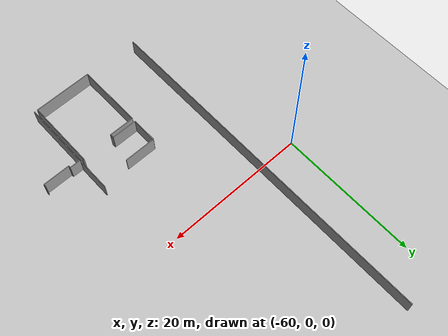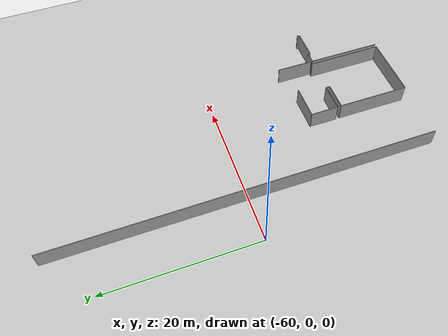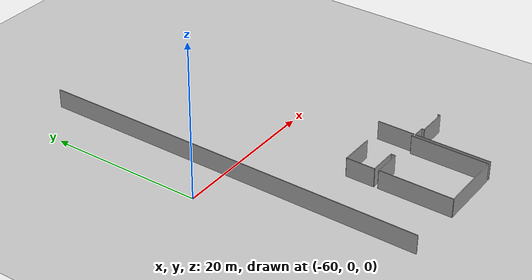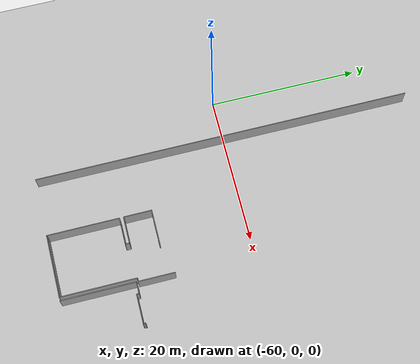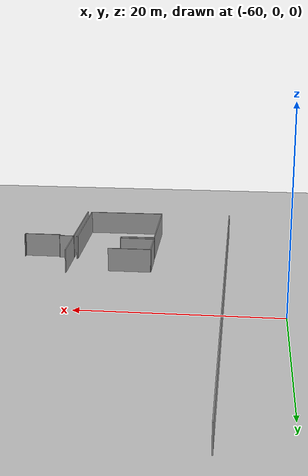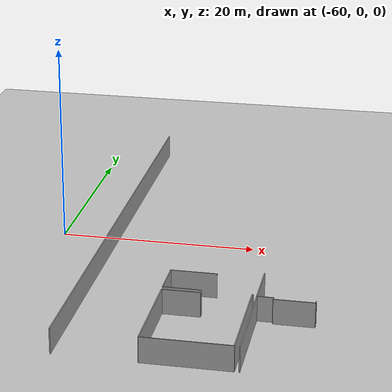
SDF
<sdf version="1.6">
 <world name="default">
  <model name="ground_plane">
   <static>1</static>
   <link name="link">
    <collision name="collision">
     <geometry><plane><normal>0 0 1</normal><size>100 100</size></plane></geometry>
     <surface><friction><ode><mu>100</mu><mu2>50</mu2></ode></friction></surface>
    </collision>
    <visual name="visual">
     <cast_shadows>0</cast_shadows>
     <geometry><plane><normal>0 0 1</normal><size>100 100</size></plane></geometry>
     <material>
      <script><uri>file://media/materials/scripts/gazebo.material</uri><name>Gazebo/Grey</name></script>
     </material>
    </visual>
   </link>
  </model>
  <model name="50045366">
   <static>1</static>
   <link name="Wall_92">
    <collision name="Wall_92_Collision">
     <geometry><box><size>4.80166643381 0.1 2.5</size></box></geometry>
     <pose>2.4008332169 0 1.25 0 0 0</pose>
    </collision>
    <visual name="Wall_92_Visual">
     <pose>2.4008332169 0 1.25 0 0 0</pose>
     <geometry><box><size>4.80166643381 0.1 2.5</size></box></geometry>
     <material>
      <script><uri>file://media/materials/scripts/gazebo.material</uri><name>Gazebo/Grey</name></script>
      <ambient>1 1 1 1</ambient>
     </material>
    </visual>
    <pose>16.7103174099 -40.7215709187 0 0 0 1.57079632679</pose>
   </link>
   <link name="Wall_106">
    <collision name="Wall_106_Collision">
     <geometry><box><size>9.49498926725 0.1 2.5</size></box></geometry>
     <pose>4.74749463363 0 1.25 0 0 0</pose>
    </collision>
    <visual name="Wall_106_Visual">
     <pose>4.74749463363 0 1.25 0 0 0</pose>
     <geometry><box><size>9.49498926725 0.1 2.5</size></box></geometry>
     <material>
      <script><uri>file://media/materials/scripts/gazebo.material</uri><name>Gazebo/Grey</name></script>
      <ambient>1 1 1 1</ambient>
     </material>
    </visual>
    <pose>7.91047998882 -50.7246192732 0 0 0 1.57079632679</pose>
   </link>
   <link name="Wall_107">
    <collision name="Wall_107_Collision">
     <geometry><box><size>3.61445936162 0.1 2.5</size></box></geometry>
     <pose>1.80722968081 0 1.25 0 0 0</pose>
    </collision>
    <visual name="Wall_107_Visual">
     <pose>1.80722968081 0 1.25 0 0 0</pose>
     <geometry><box><size>3.61445936162 0.1 2.5</size></box></geometry>
     <material>
      <script><uri>file://media/materials/scripts/gazebo.material</uri><name>Gazebo/Grey</name></script>
      <ambient>1 1 1 1</ambient>
     </material>
    </visual>
    <pose>7.91047998882 -41.229630006 0 0 0 0.0</pose>
   </link>
   <link name="Wall_108">
    <collision name="Wall_108_Collision">
     <geometry><box><size>0.540447854085 0.1 2.5</size></box></geometry>
     <pose>0.270223927043 0 1.25 0 0 0</pose>
    </collision>
    <visual name="Wall_108_Visual">
     <pose>0.270223927043 0 1.25 0 0 0</pose>
     <geometry><box><size>0.540447854085 0.1 2.5</size></box></geometry>
     <material>
      <script><uri>file://media/materials/scripts/gazebo.material</uri><name>Gazebo/Grey</name></script>
      <ambient>1 1 1 1</ambient>
     </material>
    </visual>
    <pose>11.5249393504 -41.229630006 0 0 0 1.57079632679</pose>
   </link>
   <link name="Wall_109">
    <collision name="Wall_109_Collision">
     <geometry><box><size>3.63706799101 0.1 2.5</size></box></geometry>
     <pose>1.8185339955 0 1.25 0 0 0</pose>
    </collision>
    <visual name="Wall_109_Visual">
     <pose>1.8185339955 0 1.25 0 0 0</pose>
     <geometry><box><size>3.63706799101 0.1 2.5</size></box></geometry>
     <material>
      <script><uri>file://media/materials/scripts/gazebo.material</uri><name>Gazebo/Grey</name></script>
      <ambient>1 1 1 1</ambient>
     </material>
    </visual>
    <pose>11.5249393504 -40.6891821519 0 0 0 3.14159265359</pose>
   </link>
   <link name="Wall_110">
    <collision name="Wall_110_Collision">
     <geometry><box><size>3.70705313028 0.1 2.5</size></box></geometry>
     <pose>1.85352656514 0 1.25 0 0 0</pose>
    </collision>
    <visual name="Wall_110_Visual">
     <pose>1.85352656514 0 1.25 0 0 0</pose>
     <geometry><box><size>3.70705313028 0.1 2.5</size></box></geometry>
     <material>
      <script><uri>file://media/materials/scripts/gazebo.material</uri><name>Gazebo/Grey</name></script>
      <ambient>1 1 1 1</ambient>
     </material>
    </visual>
    <pose>7.88787135944 -40.6891821519 0 0 0 1.57079632679</pose>
   </link>
   <link name="Wall_111">
    <collision name="Wall_111_Collision">
     <geometry><box><size>4.48146219405 0.1 2.5</size></box></geometry>
     <pose>2.24073109703 0 1.25 0 0 0</pose>
    </collision>
    <visual name="Wall_111_Visual">
     <pose>2.24073109703 0 1.25 0 0 0</pose>
     <geometry><box><size>4.48146219405 0.1 2.5</size></box></geometry>
     <material>
      <script><uri>file://media/materials/scripts/gazebo.material</uri><name>Gazebo/Grey</name></script>
      <ambient>1 1 1 1</ambient>
     </material>
    </visual>
    <pose>7.88787135944 -36.9821290216 0 0 0 0.0</pose>
   </link>
   <link name="Wall_114">
    <collision name="Wall_114_Collision">
     <geometry><box><size>0.148480268255 0.1 2.5</size></box></geometry>
     <pose>0.0742401341276 0 1.25 0 0 0</pose>
    </collision>
    <visual name="Wall_114_Visual">
     <pose>0.0742401341276 0 1.25 0 0 0</pose>
     <geometry><box><size>0.148480268255 0.1 2.5</size></box></geometry>
     <material>
      <script><uri>file://media/materials/scripts/gazebo.material</uri><name>Gazebo/Grey</name></script>
      <ambient>1 1 1 1</ambient>
     </material>
    </visual>
    <pose>16.3950667463 -40.7142040619 0 0 0 3.14159265359</pose>
   </link>
   <link name="Wall_115">
    <collision name="Wall_115_Collision">
     <geometry><box><size>9.9711676468 0.1 2.5</size></box></geometry>
     <pose>4.9855838234 0 1.25 0 0 0</pose>
    </collision>
    <visual name="Wall_115_Visual">
     <pose>4.9855838234 0 1.25 0 0 0</pose>
     <geometry><box><size>9.9711676468 0.1 2.5</size></box></geometry>
     <material>
      <script><uri>file://media/materials/scripts/gazebo.material</uri><name>Gazebo/Grey</name></script>
      <ambient>1 1 1 1</ambient>
     </material>
    </visual>
    <pose>16.246586478 -40.7142040619 0 0 0 -1.57079632679</pose>
   </link>
   <link name="Wall_116">
    <collision name="Wall_116_Collision">
     <geometry><box><size>8.33619888021 0.1 2.5</size></box></geometry>
     <pose>4.1680994401 0 1.25 0 0 0</pose>
    </collision>
    <visual name="Wall_116_Visual">
     <pose>4.1680994401 0 1.25 0 0 0</pose>
     <geometry><box><size>8.33619888021 0.1 2.5</size></box></geometry>
     <material>
      <script><uri>file://media/materials/scripts/gazebo.material</uri><name>Gazebo/Grey</name></script>
      <ambient>1 1 1 1</ambient>
     </material>
    </visual>
    <pose>16.246586478 -50.6853717087 0 0 0 -3.13688454741</pose>
   </link>
   <link name="Wall_117">
    <collision name="Wall_117_Collision">
     <geometry><box><size>9.79067965604 0.1 2.5</size></box></geometry>
     <pose>4.89533982802 0 1.25 0 0 0</pose>
    </collision>
    <visual name="Wall_117_Visual">
     <pose>4.89533982802 0 1.25 0 0 0</pose>
     <geometry><box><size>9.79067965604 0.1 2.5</size></box></geometry>
     <material>
      <script><uri>file://media/materials/scripts/gazebo.material</uri><name>Gazebo/Grey</name></script>
      <ambient>1 1 1 1</ambient>
     </material>
    </visual>
    <pose>16.7103174099 -50.7385908981 0 0 0 1.57079632679</pose>
   </link>
   <link name="Wall_118">
    <collision name="Wall_118_Collision">
     <geometry><box><size>1.53814888672 0.1 2.5</size></box></geometry>
     <pose>0.769074443358 0 1.25 0 0 0</pose>
    </collision>
    <visual name="Wall_118_Visual">
     <pose>0.769074443358 0 1.25 0 0 0</pose>
     <geometry><box><size>1.53814888672 0.1 2.5</size></box></geometry>
     <material>
      <script><uri>file://media/materials/scripts/gazebo.material</uri><name>Gazebo/Grey</name></script>
      <ambient>1 1 1 1</ambient>
     </material>
    </visual>
    <pose>16.7103174099 -40.9479112421 0 0 0 0.0</pose>
   </link>
   <link name="Wall_119">
    <collision name="Wall_119_Collision">
     <geometry><box><size>0.315758722739 0.1 2.5</size></box></geometry>
     <pose>0.15787936137 0 1.25 0 0 0</pose>
    </collision>
    <visual name="Wall_119_Visual">
     <pose>0.15787936137 0 1.25 0 0 0</pose>
     <geometry><box><size>0.315758722739 0.1 2.5</size></box></geometry>
     <material>
      <script><uri>file://media/materials/scripts/gazebo.material</uri><name>Gazebo/Grey</name></script>
      <ambient>1 1 1 1</ambient>
     </material>
    </visual>
    <pose>18.2484662966 -40.9479112421 0 0 0 -1.57079632679</pose>
   </link>
   <link name="Wall_120">
    <collision name="Wall_120_Collision">
     <geometry><box><size>3.85832772351 0.1 2.5</size></box></geometry>
     <pose>1.92916386176 0 1.25 0 0 0</pose>
    </collision>
    <visual name="Wall_120_Visual">
     <pose>1.92916386176 0 1.25 0 0 0</pose>
     <geometry><box><size>3.85832772351 0.1 2.5</size></box></geometry>
     <material>
      <script><uri>file://media/materials/scripts/gazebo.material</uri><name>Gazebo/Grey</name></script>
      <ambient>1 1 1 1</ambient>
     </material>
    </visual>
    <pose>18.2484662966 -41.2636699648 0 0 0 0.0</pose>
   </link>
   <link name="Wall_121">
    <collision name="Wall_121_Collision">
     <geometry><box><size>0.277908320738 0.1 2.5</size></box></geometry>
     <pose>0.138954160369 0 1.25 0 0 0</pose>
    </collision>
    <visual name="Wall_121_Visual">
     <pose>0.138954160369 0 1.25 0 0 0</pose>
     <geometry><box><size>0.277908320738 0.1 2.5</size></box></geometry>
     <material>
      <script><uri>file://media/materials/scripts/gazebo.material</uri><name>Gazebo/Grey</name></script>
      <ambient>1 1 1 1</ambient>
     </material>
    </visual>
    <pose>22.1067940201 -41.2636699648 0 0 0 1.57079632679</pose>
   </link>
   <link name="Wall_122">
    <collision name="Wall_122_Collision">
     <geometry><box><size>0.0631263415935 0.1 2.5</size></box></geometry>
     <pose>0.0315631707968 0 1.25 0 0 0</pose>
    </collision>
    <visual name="Wall_122_Visual">
     <pose>0.0315631707968 0 1.25 0 0 0</pose>
     <geometry><box><size>0.0631263415935 0.1 2.5</size></box></geometry>
     <material>
      <script><uri>file://media/materials/scripts/gazebo.material</uri><name>Gazebo/Grey</name></script>
      <ambient>1 1 1 1</ambient>
     </material>
    </visual>
    <pose>22.1067940201 -40.9857616441 0 0 0 0.0</pose>
   </link>
   <link name="Wall_482">
    <collision name="Wall_482_Collision">
     <geometry><box><size>50.7531975969 0.1 2.5</size></box></geometry>
     <pose>25.3765987984 0 1.25 0 0 0</pose>
    </collision>
    <visual name="Wall_482_Visual">
     <pose>25.3765987984 0 1.25 0 0 0</pose>
     <geometry><box><size>50.7531975969 0.1 2.5</size></box></geometry>
     <material>
      <script><uri>file://media/materials/scripts/gazebo.material</uri><name>Gazebo/Grey</name></script>
      <ambient>1 1 1 1</ambient>
     </material>
    </visual>
    <pose>0.0 -50.7531975969 0 0 0 1.57079632679</pose>
   </link>
   <pose>-54.1 25.3531975969 0 0 0 0</pose>
  </model>
 </world>
</sdf>
